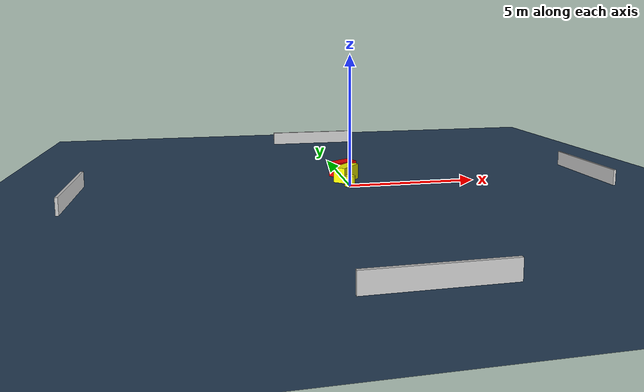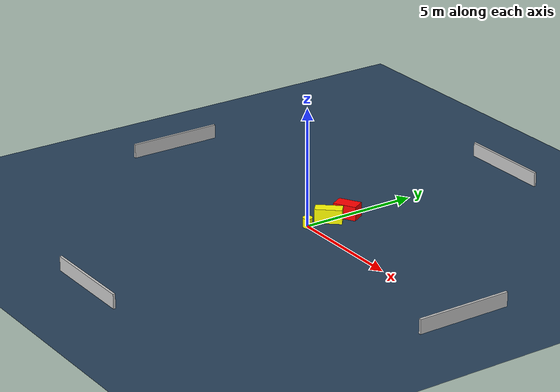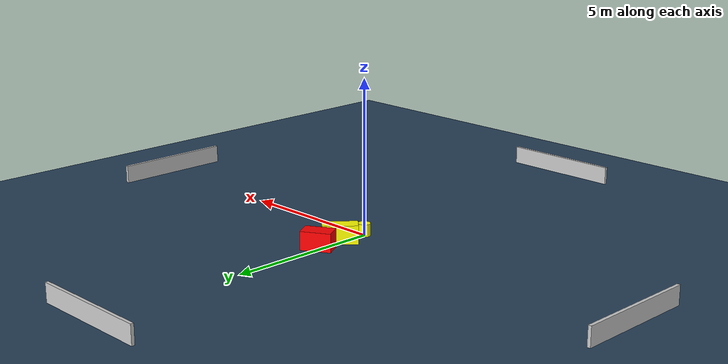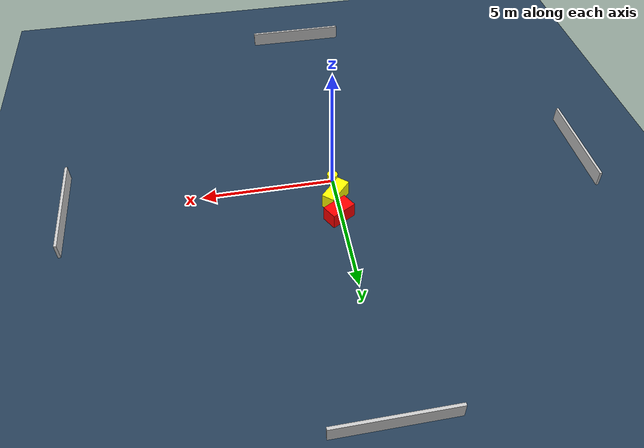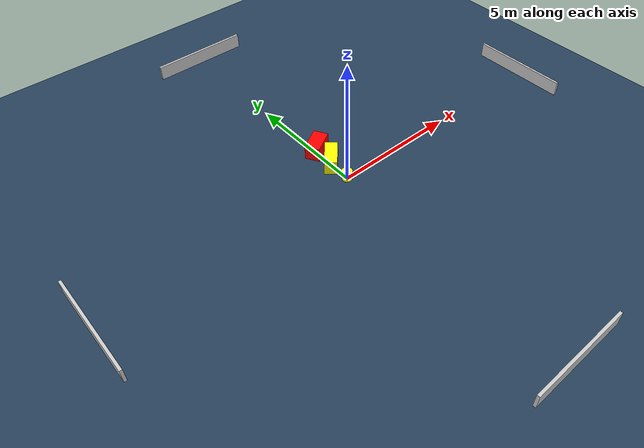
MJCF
<?xml version="1.0" ?>
<mujoco model="generated_environment">
  <option timestep="0.01" integrator="RK4" cone="elliptic"/>
  <default>
    <geom density="1"/>
  </default>
  <asset>
    <texture builtin="gradient" height="3072" name="skybox" rgb1="0.3 0.5 0.7" rgb2="0 0 0" type="skybox" width="512"/>
    <texture builtin="checker" height="300" name="groundplane" rgb1="0.2 0.3 0.4" rgb2="0.1 0.2 0.3" type="2d" width="300"/>
    <material name="groundplane" reflectance="0.2" texrepeat="5 5" texture="groundplane"/>
  </asset>
  <worldbody>
    <light dir="0 0 -1" directional="true" pos="0 0 1.5"/>
    <geom condim="3" friction="0.5 0.005 0.001" material="groundplane" name="floor" pos="0 0 0" size="0 0 0.05" type="plane"/>
    <body name="walls">
      <geom name="wall_1" condim="4" pos="-10.0 0.0 0.3" rgba="0.800000011920929 0.800000011920929 0.800000011920929 1.0" size="0.05 2.0 0.3" type="box"/>
      <geom name="wall_2" condim="4" pos="10.0 0.0 0.3" rgba="0.800000011920929 0.800000011920929 0.800000011920929 1.0" size="0.05 2.0 0.3" type="box"/>
      <geom name="wall_3" condim="4" pos="0.0 -10.0 0.3" rgba="0.800000011920929 0.800000011920929 0.800000011920929 1.0" size="2.0 0.05 0.3" type="box"/>
      <geom name="wall_4" condim="4" pos="0.0 10.0 0.3" rgba="0.800000011920929 0.800000011920929 0.800000011920929 1.0" size="2.0 0.05 0.3" type="box"/>
    </body>
    <body name="robot">
      <joint name="joint_x" type="slide" pos="0 0 0" axis="1 0 0"/>
      <joint name="joint_y" type="slide" pos="0 0 0" axis="0 1 0"/>
      <geom name="robot" type="cylinder" pos="0.0 0.0 0.2" size="0.2 0.2 0.0" mass="5.0" friction="1.0 0.005 0.0001" condim="4" rgba="1.0 1.0 0.0 1.0"/>
    </body>
    <body name="obstacle_1_movable">
      <geom name="obstacle_1_movable" condim="4" pos="0.05874953789714837 0.9826872637395908 0.3" euler="0 0 48.326116060141345" friction="0.0 0.005 0.001" rgba="1.0 1.0 0.0 1.0" size="0.5575045854561261 0.24447763339300568 0.3" type="box" mass="0.1"/>
      <joint type="free"/>
    </body>
    <body name="obstacle_2_static">
      <geom name="obstacle_2_static" condim="4" pos="0.0904007132416384 1.8693972584631167 0.3" euler="0 0 209.76598163906078" friction="0.0 0.005 0.001" rgba="1.0 0.0 0.0 1.0" size="0.48807817129945325 0.2923328053405614 0.3" type="box"/>
    </body>
  </worldbody>
  <actuator>
    <motor name="actuator_x" joint="joint_x" gear="1" ctrlrange="-1 1"/>
    <motor name="actuator_y" joint="joint_y" gear="1" ctrlrange="-1 1"/>
  </actuator>
</mujoco>
